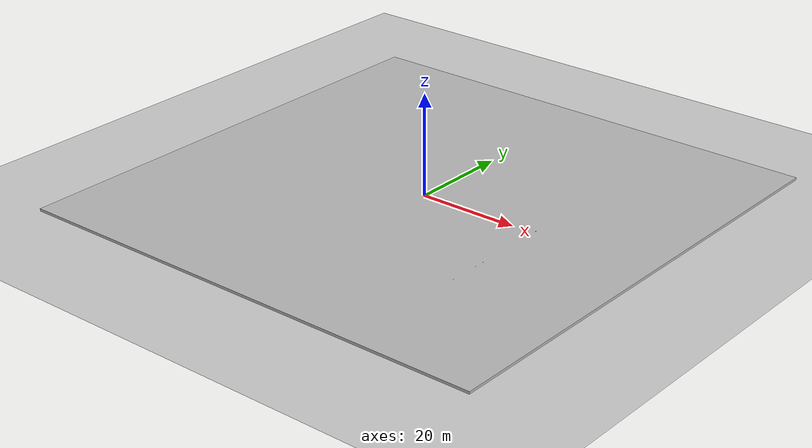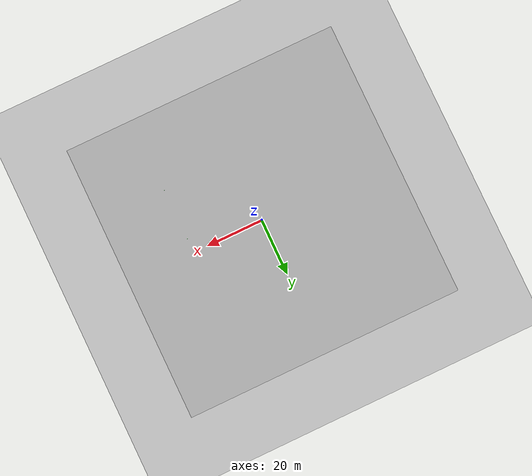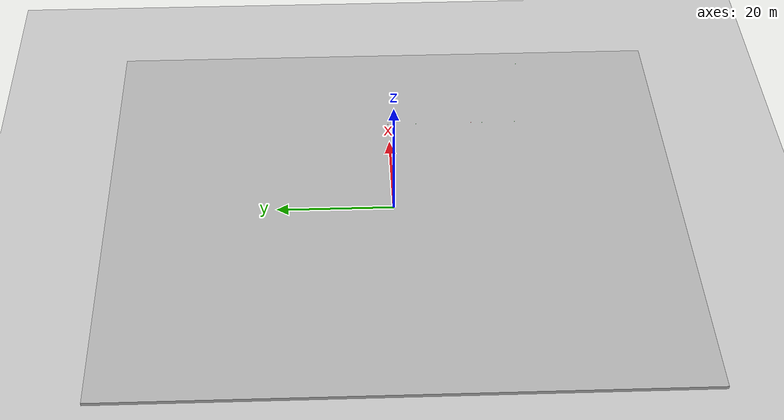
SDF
<sdf version="1.6">
 <world name="default">
  <model name="ground_plane">
   <static>1</static>
   <link name="link">
    <collision name="collision">
     <geometry><plane><normal>0 0 1</normal><size>100 100</size></plane></geometry>
     <surface><friction><ode><mu>100</mu><mu2>50</mu2></ode></friction></surface>
    </collision>
    <visual name="visual">
     <cast_shadows>0</cast_shadows>
     <geometry><plane><normal>0 0 1</normal><size>100 100</size></plane></geometry>
     <material>
      <script><uri>file://media/materials/scripts/gazebo.material</uri><name>Gazebo/Grey</name></script>
     </material>
    </visual>
   </link>
  </model>
  <light name="sun" type="directional">
   <pose>0 0 10 0 -0 0</pose>
   <diffuse>0.8 0.8 0.8 1</diffuse>
   <specular>0.1 0.1 0.1 1</specular>
   <attenuation>
    <range>1000</range>
    <constant>0.9</constant>
    <linear>0.01</linear>
    <quadratic>0.001</quadratic>
   </attenuation>
   <direction>-0.5 0.5 -1</direction>
  </light>
  <model name="surface">
   <pose>0 0 0.25 0 0 0</pose>
   <static>1</static>
   <link name="link">
    <inertial>
     <mass>1000</mass>
     <inertia>
      <ixx>800.33</ixx>
      <iyy>800.33</iyy>
      <izz>1600.66</izz>
      <ixy>800.3</ixy>
      <ixz>1200.3</ixz>
      <iyz>1200</iyz>
     </inertia>
    </inertial>
    <collision name="body_collision">
     <geometry><box><size>98 98 0.5</size></box></geometry>
     <surface><friction><ode><mu>100</mu><mu2>50</mu2></ode></friction></surface>
    </collision>
    <visual name="v1"><geometry><box><size>98 98 0.5</size></box></geometry></visual>
   </link>
  </model>
  <gravity>0 0 -9.8</gravity>
  <magnetic_field>6e-06 2.3e-05 -4.2e-05</magnetic_field>
  <atmosphere type="adiabatic"/>
  <physics name="default_physics" default="0" type="ode">
   <max_step_size>0.001</max_step_size>
   <real_time_factor>1</real_time_factor>
   <real_time_update_rate>1000</real_time_update_rate>
  </physics>
  <scene><ambient>0.4 0.4 0.4 1</ambient><background>0.7 0.7 0.7 1</background><shadows>1</shadows></scene>
  <spherical_coordinates>
   <surface_model>EARTH_WGS84</surface_model>
   <latitude_deg>0</latitude_deg>
   <longitude_deg>0</longitude_deg>
   <elevation>0</elevation>
   <heading_deg>0</heading_deg>
  </spherical_coordinates>
  <model name="sphere">
   <pose>1 0.05 0.55 0 0 0</pose>
   <link name="link">
    <inertial>
     <mass>0.25</mass>
     <inertia><ixx>0.00169</ixx><iyy>0.00169</iyy><izz>0.00169</izz><ixy>0</ixy><ixz>0</ixz><iyz>0</iyz></inertia>
    </inertial>
    <collision name="body_collision"><geometry><sphere><radius>0.05</radius></sphere></geometry></collision>
    <visual name="v1">
     <material>
      <ambient>1 0 0 1.0</ambient>
      <diffuse>1 0 0 1.0</diffuse>
      <specular>1 0 0 1.0</specular>
      <emissive>1 0 0 1.0</emissive>
     </material>
     <geometry><sphere><radius>0.05</radius></sphere></geometry>
    </visual>
   </link>
  </model>
  <model name="sphere">
   <pose>3 0.05 0.55 0 0 0</pose>
   <link name="link">
    <inertial>
     <mass>0.25</mass>
     <inertia><ixx>0.00169</ixx><iyy>0.00169</iyy><izz>0.00169</izz><ixy>0</ixy><ixz>0</ixz><iyz>0</iyz></inertia>
    </inertial>
    <collision name="body_collision"><geometry><sphere><radius>0.05</radius></sphere></geometry></collision>
    <visual name="v1">
     <material>
      <ambient>0 1 0 1.0</ambient>
      <diffuse>0 1 0 1.0</diffuse>
      <specular>0 1 0 1.0</specular>
      <emissive>0 1 0 1.0</emissive>
     </material>
     <geometry><sphere><radius>0.05</radius></sphere></geometry>
    </visual>
   </link>
  </model>
  <model name="sphere">
   <pose>15 0.05 0.55 0 0 0</pose>
   <link name="link">
    <inertial>
     <mass>0.25</mass>
     <inertia><ixx>0.00169</ixx><iyy>0.00169</iyy><izz>0.00169</izz><ixy>0</ixy><ixz>0</ixz><iyz>0</iyz></inertia>
    </inertial>
    <collision name="body_collision"><geometry><sphere><radius>0.05</radius></sphere></geometry></collision>
    <visual name="v1">
     <material>
      <ambient>0 1 0 1.0</ambient>
      <diffuse>0 1 0 1.0</diffuse>
      <specular>0 1 0 1.0</specular>
      <emissive>0 1 0 1.0</emissive>
     </material>
     <geometry><sphere><radius>0.05</radius></sphere></geometry>
    </visual>
   </link>
  </model>
  <model name="sphere">
   <pose>5 0.05 0.55 0 0 0</pose>
   <link name="link">
    <inertial>
     <mass>0.25</mass>
     <inertia><ixx>0.00169</ixx><iyy>0.00169</iyy><izz>0.00169</izz><ixy>0</ixy><ixz>0</ixz><iyz>0</iyz></inertia>
    </inertial>
    <collision name="body_collision"><geometry><sphere><radius>0.05</radius></sphere></geometry></collision>
    <visual name="v1">
     <material>
      <ambient>1 0 0 1.0</ambient>
      <diffuse>1 0 0 1.0</diffuse>
      <specular>1 0 0 1.0</specular>
      <emissive>1 0 0 1.0</emissive>
     </material>
     <geometry><sphere><radius>0.05</radius></sphere></geometry>
    </visual>
   </link>
  </model>
  <model name="sphere">
   <pose>25.05 0.05 0.55 0 0 0</pose>
   <link name="link">
    <inertial>
     <mass>0.25</mass>
     <inertia><ixx>0.00169</ixx><iyy>0.00169</iyy><izz>0.00169</izz><ixy>0</ixy><ixz>0</ixz><iyz>0</iyz></inertia>
    </inertial>
    <collision name="body_collision"><geometry><sphere><radius>0.05</radius></sphere></geometry></collision>
    <visual name="v1">
     <material>
      <ambient>1 0 0 1.0</ambient>
      <diffuse>1 0 0 1.0</diffuse>
      <specular>1 0 0 1.0</specular>
      <emissive>1 0 0 1.0</emissive>
     </material>
     <geometry><sphere><radius>0.05</radius></sphere></geometry>
    </visual>
   </link>
  </model>
  <model name="sphere">
   <pose>25.05 -17 0.55 0 0 0</pose>
   <link name="link">
    <inertial>
     <mass>0.25</mass>
     <inertia><ixx>0.00169</ixx><iyy>0.00169</iyy><izz>0.00169</izz><ixy>0</ixy><ixz>0</ixz><iyz>0</iyz></inertia>
    </inertial>
    <collision name="body_collision"><geometry><sphere><radius>0.05</radius></sphere></geometry></collision>
    <visual name="v1">
     <material>
      <ambient>0 1 0 1.0</ambient>
      <diffuse>0 1 0 1.0</diffuse>
      <specular>0 1 0 1.0</specular>
      <emissive>0 1 0 1.0</emissive>
     </material>
     <geometry><sphere><radius>0.05</radius></sphere></geometry>
    </visual>
   </link>
  </model>
  <model name="sphere">
   <pose>25.05 -5 0.55 0 0 0</pose>
   <link name="link">
    <inertial>
     <mass>0.25</mass>
     <inertia><ixx>0.00169</ixx><iyy>0.00169</iyy><izz>0.00169</izz><ixy>0</ixy><ixz>0</ixz><iyz>0</iyz></inertia>
    </inertial>
    <collision name="body_collision"><geometry><sphere><radius>0.05</radius></sphere></geometry></collision>
    <visual name="v1">
     <material>
      <ambient>0 1 0 1.0</ambient>
      <diffuse>0 1 0 1.0</diffuse>
      <specular>0 1 0 1.0</specular>
      <emissive>0 1 0 1.0</emissive>
     </material>
     <geometry><sphere><radius>0.05</radius></sphere></geometry>
    </visual>
   </link>
  </model>
  <model name="sphere">
   <pose>25.05 -15 0.55 0 0 0</pose>
   <link name="link">
    <inertial>
     <mass>0.25</mass>
     <inertia><ixx>0.00169</ixx><iyy>0.00169</iyy><izz>0.00169</izz><ixy>0</ixy><ixz>0</ixz><iyz>0</iyz></inertia>
    </inertial>
    <collision name="body_collision"><geometry><sphere><radius>0.05</radius></sphere></geometry></collision>
    <visual name="v1">
     <material>
      <ambient>1 0 0 1.0</ambient>
      <diffuse>1 0 0 1.0</diffuse>
      <specular>1 0 0 1.0</specular>
      <emissive>1 0 0 1.0</emissive>
     </material>
     <geometry><sphere><radius>0.05</radius></sphere></geometry>
    </visual>
   </link>
  </model>
  <model name="sphere">
   <pose>25.05 -23 0.55 0 0 0</pose>
   <link name="link">
    <inertial>
     <mass>0.25</mass>
     <inertia><ixx>0.00169</ixx><iyy>0.00169</iyy><izz>0.00169</izz><ixy>0</ixy><ixz>0</ixz><iyz>0</iyz></inertia>
    </inertial>
    <collision name="body_collision"><geometry><sphere><radius>0.05</radius></sphere></geometry></collision>
    <visual name="v1">
     <material>
      <ambient>0 1 0 1.0</ambient>
      <diffuse>0 1 0 1.0</diffuse>
      <specular>0 1 0 1.0</specular>
      <emissive>0 1 0 1.0</emissive>
     </material>
     <geometry><sphere><radius>0.05</radius></sphere></geometry>
    </visual>
   </link>
  </model>
  <model name="sphere">
   <pose>45 -24.95 0.55 0 0 0</pose>
   <link name="link">
    <inertial>
     <mass>0.25</mass>
     <inertia><ixx>0.00169</ixx><iyy>0.00169</iyy><izz>0.00169</izz><ixy>0</ixy><ixz>0</ixz><iyz>0</iyz></inertia>
    </inertial>
    <collision name="body_collision"><geometry><sphere><radius>0.05</radius></sphere></geometry></collision>
    <visual name="v1">
     <material>
      <ambient>0 1 0 1.0</ambient>
      <diffuse>0 1 0 1.0</diffuse>
      <specular>0 1 0 1.0</specular>
      <emissive>0 1 0 1.0</emissive>
     </material>
     <geometry><sphere><radius>0.05</radius></sphere></geometry>
    </visual>
   </link>
  </model>
 </world>
</sdf>
